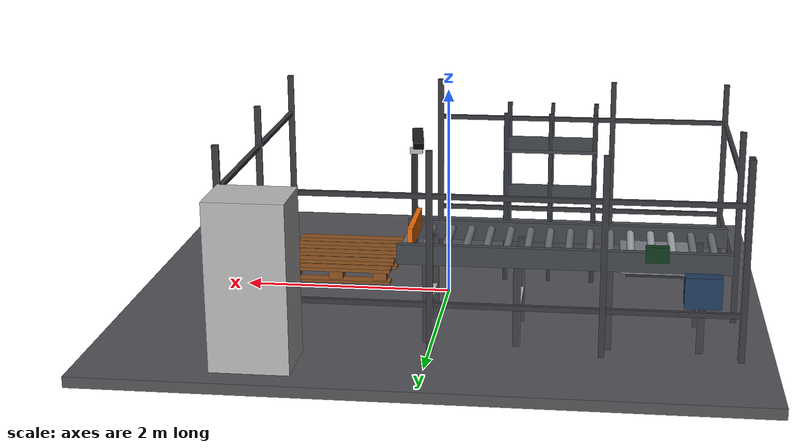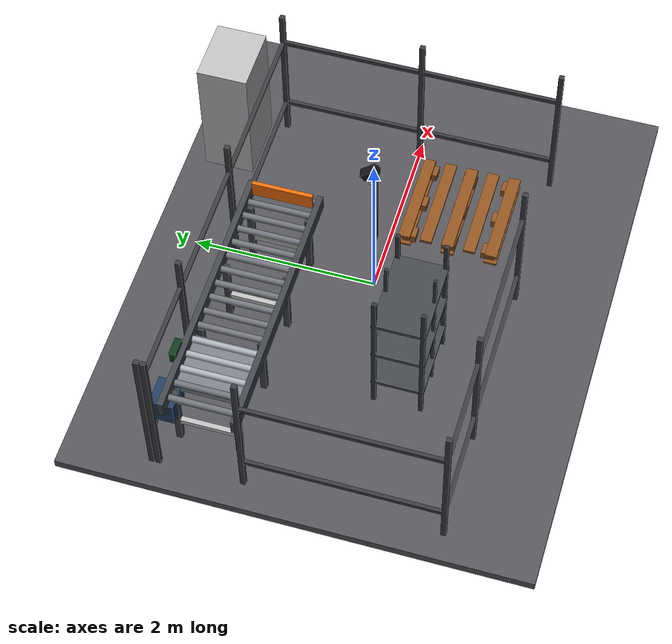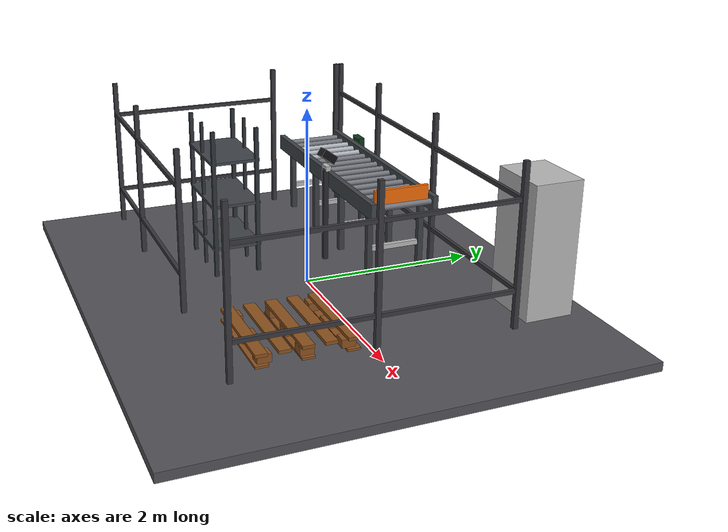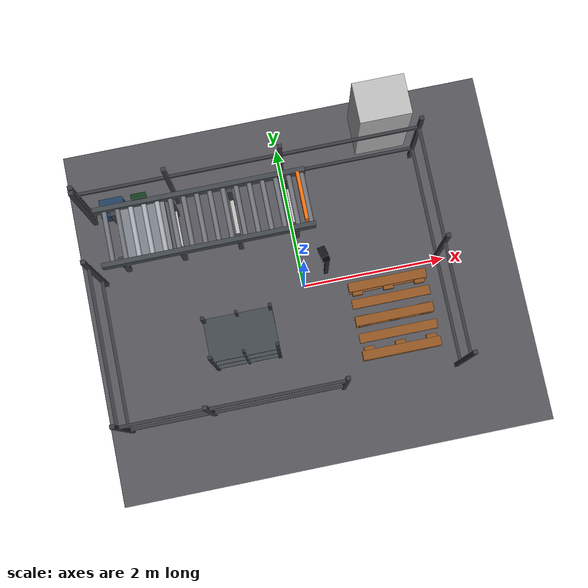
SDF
<?xml version="1.0"?>
<sdf version="1.8">
  <world name="ahead_workcell_v3_2_compact">
    <plugin filename="ignition-gazebo-physics-system" name="ignition::gazebo::systems::Physics"/>
    <plugin filename="ignition-gazebo-user-commands-system" name="ignition::gazebo::systems::UserCommands"/>
    <plugin filename="ignition-gazebo-scene-broadcaster-system" name="ignition::gazebo::systems::SceneBroadcaster"/>
    <plugin filename="ignition-gazebo-sensors-system" name="ignition::gazebo::systems::Sensors"><render_engine>ogre2</render_engine></plugin>
    <gravity>0 0 -9.80665</gravity>
    <physics name="default_physics" type="ignored"><max_step_size>0.001</max_step_size><real_time_factor>1.0</real_time_factor></physics>
    <light type="directional" name="sun"><pose>0 0 8 0 0 0</pose><diffuse>0.8 0.8 0.8 1</diffuse><direction>-0.4 0.3 -1</direction></light>

    <model name="floor"><static>true</static><link name="floor_link">
      <collision name="collision"><pose>0 0 -0.05 0 0 0</pose><geometry><box><size>6 5 0.10</size></box></geometry></collision>
      <visual name="visual"><pose>0 0 -0.05 0 0 0</pose><geometry><box><size>6 5 0.10</size></box></geometry><material><ambient>0.22 0.22 0.23 1</ambient><diffuse>0.32 0.32 0.34 1</diffuse></material></visual>
    </link></model>

    <model name="conveyor_main">
      <static>true</static>

      <link name="conveyor_link">

        <collision name="collision">
          <pose>-1.15 1.05 0.75 0 0 0</pose>

          <geometry>
            <box><size>2.80 0.80 0.20</size></box>
          </geometry>

          <surface>
            <friction>
              <ode>
                <mu>0.7</mu>
                <mu2>150</mu2>
                <fdir1>0 1 0</fdir1>
              </ode>
            </friction>
          </surface>
        </collision>

        <!-- aluminium / steel side frame -->
        <visual name="left_rail">
          <pose>-1.15 0.67 0.84 0 0 0</pose>
          <geometry>
            <box><size>2.90 0.065 0.18</size></box>
          </geometry>
          <material>
            <ambient>0.11 0.12 0.13 1</ambient>
            <diffuse>0.25 0.27 0.29 1</diffuse>
          </material>
        </visual>

        <visual name="right_rail">
          <pose>-1.15 1.43 0.84 0 0 0</pose>
          <geometry>
            <box><size>2.90 0.065 0.18</size></box>
          </geometry>
          <material>
            <ambient>0.11 0.12 0.13 1</ambient>
            <diffuse>0.25 0.27 0.29 1</diffuse>
          </material>
        </visual>

        <visual name="roller_00">
          <pose>-2.450 1.05 0.86 1.57079632679 0 0</pose>
          <geometry>
            <cylinder>
              <radius>0.035</radius>
              <length>0.68</length>
            </cylinder>
          </geometry>
          <material>
            <ambient>0.27 0.28 0.30 1</ambient>
            <diffuse>0.44 0.45 0.48 1</diffuse>
          </material>
        </visual>

        <visual name="roller_01">
          <pose>-2.270 1.05 0.86 1.57079632679 0 0</pose>
          <geometry>
            <cylinder>
              <radius>0.035</radius>
              <length>0.68</length>
            </cylinder>
          </geometry>
          <material>
            <ambient>0.27 0.28 0.30 1</ambient>
            <diffuse>0.44 0.45 0.48 1</diffuse>
          </material>
        </visual>

        <visual name="roller_02">
          <pose>-2.090 1.05 0.86 1.57079632679 0 0</pose>
          <geometry>
            <cylinder>
              <radius>0.035</radius>
              <length>0.68</length>
            </cylinder>
          </geometry>
          <material>
            <ambient>0.43 0.45 0.47 1</ambient>
            <diffuse>0.66 0.68 0.71 1</diffuse>
          </material>
        </visual>

        <visual name="roller_03">
          <pose>-1.910 1.05 0.86 1.57079632679 0 0</pose>
          <geometry>
            <cylinder>
              <radius>0.035</radius>
              <length>0.68</length>
            </cylinder>
          </geometry>
          <material>
            <ambient>0.43 0.45 0.47 1</ambient>
            <diffuse>0.66 0.68 0.71 1</diffuse>
          </material>
        </visual>

        <visual name="roller_04">
          <pose>-1.730 1.05 0.86 1.57079632679 0 0</pose>
          <geometry>
            <cylinder>
              <radius>0.035</radius>
              <length>0.68</length>
            </cylinder>
          </geometry>
          <material>
            <ambient>0.43 0.45 0.47 1</ambient>
            <diffuse>0.66 0.68 0.71 1</diffuse>
          </material>
        </visual>

        <visual name="roller_05">
          <pose>-1.550 1.05 0.86 1.57079632679 0 0</pose>
          <geometry>
            <cylinder>
              <radius>0.035</radius>
              <length>0.68</length>
            </cylinder>
          </geometry>
          <material>
            <ambient>0.27 0.28 0.30 1</ambient>
            <diffuse>0.44 0.45 0.48 1</diffuse>
          </material>
        </visual>

        <visual name="roller_06">
          <pose>-1.370 1.05 0.86 1.57079632679 0 0</pose>
          <geometry>
            <cylinder>
              <radius>0.035</radius>
              <length>0.68</length>
            </cylinder>
          </geometry>
          <material>
            <ambient>0.27 0.28 0.30 1</ambient>
            <diffuse>0.44 0.45 0.48 1</diffuse>
          </material>
        </visual>

        <visual name="roller_07">
          <pose>-1.190 1.05 0.86 1.57079632679 0 0</pose>
          <geometry>
            <cylinder>
              <radius>0.035</radius>
              <length>0.68</length>
            </cylinder>
          </geometry>
          <material>
            <ambient>0.27 0.28 0.30 1</ambient>
            <diffuse>0.44 0.45 0.48 1</diffuse>
          </material>
        </visual>

        <visual name="roller_08">
          <pose>-1.010 1.05 0.86 1.57079632679 0 0</pose>
          <geometry>
            <cylinder>
              <radius>0.035</radius>
              <length>0.68</length>
            </cylinder>
          </geometry>
          <material>
            <ambient>0.27 0.28 0.30 1</ambient>
            <diffuse>0.44 0.45 0.48 1</diffuse>
          </material>
        </visual>

        <visual name="roller_09">
          <pose>-0.830 1.05 0.86 1.57079632679 0 0</pose>
          <geometry>
            <cylinder>
              <radius>0.035</radius>
              <length>0.68</length>
            </cylinder>
          </geometry>
          <material>
            <ambient>0.27 0.28 0.30 1</ambient>
            <diffuse>0.44 0.45 0.48 1</diffuse>
          </material>
        </visual>

        <visual name="roller_10">
          <pose>-0.650 1.05 0.86 1.57079632679 0 0</pose>
          <geometry>
            <cylinder>
              <radius>0.035</radius>
              <length>0.68</length>
            </cylinder>
          </geometry>
          <material>
            <ambient>0.27 0.28 0.30 1</ambient>
            <diffuse>0.44 0.45 0.48 1</diffuse>
          </material>
        </visual>

        <visual name="roller_11">
          <pose>-0.470 1.05 0.86 1.57079632679 0 0</pose>
          <geometry>
            <cylinder>
              <radius>0.035</radius>
              <length>0.68</length>
            </cylinder>
          </geometry>
          <material>
            <ambient>0.27 0.28 0.30 1</ambient>
            <diffuse>0.44 0.45 0.48 1</diffuse>
          </material>
        </visual>

        <visual name="roller_12">
          <pose>-0.290 1.05 0.86 1.57079632679 0 0</pose>
          <geometry>
            <cylinder>
              <radius>0.035</radius>
              <length>0.68</length>
            </cylinder>
          </geometry>
          <material>
            <ambient>0.27 0.28 0.30 1</ambient>
            <diffuse>0.44 0.45 0.48 1</diffuse>
          </material>
        </visual>

        <visual name="roller_13">
          <pose>-0.110 1.05 0.86 1.57079632679 0 0</pose>
          <geometry>
            <cylinder>
              <radius>0.035</radius>
              <length>0.68</length>
            </cylinder>
          </geometry>
          <material>
            <ambient>0.27 0.28 0.30 1</ambient>
            <diffuse>0.44 0.45 0.48 1</diffuse>
          </material>
        </visual>

        <visual name="roller_14">
          <pose>0.070 1.05 0.86 1.57079632679 0 0</pose>
          <geometry>
            <cylinder>
              <radius>0.035</radius>
              <length>0.68</length>
            </cylinder>
          </geometry>
          <material>
            <ambient>0.27 0.28 0.30 1</ambient>
            <diffuse>0.44 0.45 0.48 1</diffuse>
          </material>
        </visual>

        <visual name="roller_15">
          <pose>0.250 1.05 0.86 1.57079632679 0 0</pose>
          <geometry>
            <cylinder>
              <radius>0.035</radius>
              <length>0.68</length>
            </cylinder>
          </geometry>
          <material>
            <ambient>0.27 0.28 0.30 1</ambient>
            <diffuse>0.44 0.45 0.48 1</diffuse>
          </material>
        </visual>

        <visual name="leg_l_0">
          <pose>-2.35 0.73 0.40 0 0 0</pose>
          <geometry>
            <box><size>0.065 0.065 0.80</size></box>
          </geometry>
          <material>
            <ambient>0.12 0.13 0.14 1</ambient>
            <diffuse>0.23 0.24 0.26 1</diffuse>
          </material>
        </visual>

        <visual name="leg_r_0">
          <pose>-2.35 1.37 0.40 0 0 0</pose>
          <geometry>
            <box><size>0.065 0.065 0.80</size></box>
          </geometry>
          <material>
            <ambient>0.12 0.13 0.14 1</ambient>
            <diffuse>0.23 0.24 0.26 1</diffuse>
          </material>
        </visual>

        <visual name="crossbar_0">
          <pose>-2.35 1.05 0.31 0 0 0</pose>
          <geometry>
            <box><size>0.055 0.68 0.055</size></box>
          </geometry>
        </visual>

        <visual name="leg_l_1">
          <pose>-1.55 0.73 0.40 0 0 0</pose>
          <geometry>
            <box><size>0.065 0.065 0.80</size></box>
          </geometry>
          <material>
            <ambient>0.12 0.13 0.14 1</ambient>
            <diffuse>0.23 0.24 0.26 1</diffuse>
          </material>
        </visual>

        <visual name="leg_r_1">
          <pose>-1.55 1.37 0.40 0 0 0</pose>
          <geometry>
            <box><size>0.065 0.065 0.80</size></box>
          </geometry>
          <material>
            <ambient>0.12 0.13 0.14 1</ambient>
            <diffuse>0.23 0.24 0.26 1</diffuse>
          </material>
        </visual>

        <visual name="crossbar_1">
          <pose>-1.55 1.05 0.31 0 0 0</pose>
          <geometry>
            <box><size>0.055 0.68 0.055</size></box>
          </geometry>
        </visual>

        <visual name="leg_l_2">
          <pose>-0.75 0.73 0.40 0 0 0</pose>
          <geometry>
            <box><size>0.065 0.065 0.80</size></box>
          </geometry>
          <material>
            <ambient>0.12 0.13 0.14 1</ambient>
            <diffuse>0.23 0.24 0.26 1</diffuse>
          </material>
        </visual>

        <visual name="leg_r_2">
          <pose>-0.75 1.37 0.40 0 0 0</pose>
          <geometry>
            <box><size>0.065 0.065 0.80</size></box>
          </geometry>
          <material>
            <ambient>0.12 0.13 0.14 1</ambient>
            <diffuse>0.23 0.24 0.26 1</diffuse>
          </material>
        </visual>

        <visual name="crossbar_2">
          <pose>-0.75 1.05 0.31 0 0 0</pose>
          <geometry>
            <box><size>0.055 0.68 0.055</size></box>
          </geometry>
        </visual>

        <visual name="leg_l_3">
          <pose>0.05 0.73 0.40 0 0 0</pose>
          <geometry>
            <box><size>0.065 0.065 0.80</size></box>
          </geometry>
          <material>
            <ambient>0.12 0.13 0.14 1</ambient>
            <diffuse>0.23 0.24 0.26 1</diffuse>
          </material>
        </visual>

        <visual name="leg_r_3">
          <pose>0.05 1.37 0.40 0 0 0</pose>
          <geometry>
            <box><size>0.065 0.065 0.80</size></box>
          </geometry>
          <material>
            <ambient>0.12 0.13 0.14 1</ambient>
            <diffuse>0.23 0.24 0.26 1</diffuse>
          </material>
        </visual>

        <visual name="crossbar_3">
          <pose>0.05 1.05 0.31 0 0 0</pose>
          <geometry>
            <box><size>0.055 0.68 0.055</size></box>
          </geometry>
        </visual>

        <!-- Motor / drive box -->
        <visual name="drive_motor">
          <pose>-2.35 1.47 0.62 0 0 0</pose>
          <geometry>
            <box><size>0.32 0.25 0.28</size></box>
          </geometry>
          <material>
            <ambient>0.06 0.10 0.15 1</ambient>
            <diffuse>0.12 0.23 0.36 1</diffuse>
          </material>
        </visual>

        <!-- Pick position stopper -->
        <visual name="pick_stopper">
          <pose>0.19 1.05 0.96 0 0 0</pose>
          <geometry>
            <box><size>0.045 0.66 0.18</size></box>
          </geometry>
          <material>
            <ambient>0.65 0.25 0.02 1</ambient>
            <diffuse>0.95 0.42 0.03 1</diffuse>
          </material>
        </visual>

      </link>

      <plugin filename="libignition-gazebo-track-controller-system.so"
              name="gz::sim::systems::TrackController">
        <link>conveyor_link</link>
      </plugin>

    </model>

    <model name="inline_scale">
      <static>true</static>

      <link name="scale_link">

        <visual name="weighing_frame">
          <pose>-1.95 1.05 0.755 0 0 0</pose>
          <geometry>
            <box><size>0.62 0.70 0.085</size></box>
          </geometry>
          <material>
            <ambient>0.24 0.25 0.27 1</ambient>
            <diffuse>0.47 0.49 0.52 1</diffuse>
          </material>
        </visual>

        <visual name="loadcell_base">
          <pose>-1.95 1.05 0.685 0 0 0</pose>
          <geometry>
            <box><size>0.52 0.54 0.045</size></box>
          </geometry>
          <material>
            <ambient>0.08 0.09 0.10 1</ambient>
            <diffuse>0.17 0.18 0.20 1</diffuse>
          </material>
        </visual>

        <!-- Small scale display on side -->
        <visual name="indicator">
          <pose>-1.95 1.49 0.93 0 0 0</pose>
          <geometry>
            <box><size>0.20 0.07 0.14</size></box>
          </geometry>
          <material>
            <ambient>0.03 0.08 0.05 1</ambient>
            <diffuse>0.06 0.22 0.11 1</diffuse>
          </material>
        </visual>

      </link>
    </model>

    <model name="pallet_main">
      <static>true</static>
      <pose>1.15 -0.65 0 0 0 0</pose>
      <link name="pallet_link">

      <collision name="bottom_runner_0_collision">
        <pose>0 -0.48 0.0125 0 0 0</pose>
        <geometry><box><size>1.1 0.14 0.025</size></box></geometry>
      </collision>
      <visual name="bottom_runner_0_visual">
        <pose>0 -0.48 0.0125 0 0 0</pose>
        <geometry><box><size>1.1 0.14 0.025</size></box></geometry>
        <material>
          <ambient>0.34 0.20 0.08 1</ambient>
          <diffuse>0.55 0.32 0.12 1</diffuse>
        </material>
      </visual>

      <collision name="bottom_runner_1_collision">
        <pose>0 0.0 0.0125 0 0 0</pose>
        <geometry><box><size>1.1 0.14 0.025</size></box></geometry>
      </collision>
      <visual name="bottom_runner_1_visual">
        <pose>0 0.0 0.0125 0 0 0</pose>
        <geometry><box><size>1.1 0.14 0.025</size></box></geometry>
        <material>
          <ambient>0.34 0.20 0.08 1</ambient>
          <diffuse>0.55 0.32 0.12 1</diffuse>
        </material>
      </visual>

      <collision name="bottom_runner_2_collision">
        <pose>0 0.48 0.0125 0 0 0</pose>
        <geometry><box><size>1.1 0.14 0.025</size></box></geometry>
      </collision>
      <visual name="bottom_runner_2_visual">
        <pose>0 0.48 0.0125 0 0 0</pose>
        <geometry><box><size>1.1 0.14 0.025</size></box></geometry>
        <material>
          <ambient>0.34 0.20 0.08 1</ambient>
          <diffuse>0.55 0.32 0.12 1</diffuse>
        </material>
      </visual>

      <collision name="support_block_0_0_collision">
        <pose>-0.44 -0.44 0.07 0 0 0</pose>
        <geometry><box><size>0.14 0.15 0.09</size></box></geometry>
      </collision>
      <visual name="support_block_0_0_visual">
        <pose>-0.44 -0.44 0.07 0 0 0</pose>
        <geometry><box><size>0.14 0.15 0.09</size></box></geometry>
        <material>
          <ambient>0.34 0.20 0.08 1</ambient>
          <diffuse>0.55 0.32 0.12 1</diffuse>
        </material>
      </visual>

      <collision name="support_block_0_1_collision">
        <pose>-0.44 0.0 0.07 0 0 0</pose>
        <geometry><box><size>0.14 0.15 0.09</size></box></geometry>
      </collision>
      <visual name="support_block_0_1_visual">
        <pose>-0.44 0.0 0.07 0 0 0</pose>
        <geometry><box><size>0.14 0.15 0.09</size></box></geometry>
        <material>
          <ambient>0.34 0.20 0.08 1</ambient>
          <diffuse>0.55 0.32 0.12 1</diffuse>
        </material>
      </visual>

      <collision name="support_block_0_2_collision">
        <pose>-0.44 0.44 0.07 0 0 0</pose>
        <geometry><box><size>0.14 0.15 0.09</size></box></geometry>
      </collision>
      <visual name="support_block_0_2_visual">
        <pose>-0.44 0.44 0.07 0 0 0</pose>
        <geometry><box><size>0.14 0.15 0.09</size></box></geometry>
        <material>
          <ambient>0.34 0.20 0.08 1</ambient>
          <diffuse>0.55 0.32 0.12 1</diffuse>
        </material>
      </visual>

      <collision name="support_block_1_0_collision">
        <pose>0.0 -0.44 0.07 0 0 0</pose>
        <geometry><box><size>0.14 0.15 0.09</size></box></geometry>
      </collision>
      <visual name="support_block_1_0_visual">
        <pose>0.0 -0.44 0.07 0 0 0</pose>
        <geometry><box><size>0.14 0.15 0.09</size></box></geometry>
        <material>
          <ambient>0.34 0.20 0.08 1</ambient>
          <diffuse>0.55 0.32 0.12 1</diffuse>
        </material>
      </visual>

      <collision name="support_block_1_1_collision">
        <pose>0.0 0.0 0.07 0 0 0</pose>
        <geometry><box><size>0.14 0.15 0.09</size></box></geometry>
      </collision>
      <visual name="support_block_1_1_visual">
        <pose>0.0 0.0 0.07 0 0 0</pose>
        <geometry><box><size>0.14 0.15 0.09</size></box></geometry>
        <material>
          <ambient>0.34 0.20 0.08 1</ambient>
          <diffuse>0.55 0.32 0.12 1</diffuse>
        </material>
      </visual>

      <collision name="support_block_1_2_collision">
        <pose>0.0 0.44 0.07 0 0 0</pose>
        <geometry><box><size>0.14 0.15 0.09</size></box></geometry>
      </collision>
      <visual name="support_block_1_2_visual">
        <pose>0.0 0.44 0.07 0 0 0</pose>
        <geometry><box><size>0.14 0.15 0.09</size></box></geometry>
        <material>
          <ambient>0.34 0.20 0.08 1</ambient>
          <diffuse>0.55 0.32 0.12 1</diffuse>
        </material>
      </visual>

      <collision name="support_block_2_0_collision">
        <pose>0.44 -0.44 0.07 0 0 0</pose>
        <geometry><box><size>0.14 0.15 0.09</size></box></geometry>
      </collision>
      <visual name="support_block_2_0_visual">
        <pose>0.44 -0.44 0.07 0 0 0</pose>
        <geometry><box><size>0.14 0.15 0.09</size></box></geometry>
        <material>
          <ambient>0.34 0.20 0.08 1</ambient>
          <diffuse>0.55 0.32 0.12 1</diffuse>
        </material>
      </visual>

      <collision name="support_block_2_1_collision">
        <pose>0.44 0.0 0.07 0 0 0</pose>
        <geometry><box><size>0.14 0.15 0.09</size></box></geometry>
      </collision>
      <visual name="support_block_2_1_visual">
        <pose>0.44 0.0 0.07 0 0 0</pose>
        <geometry><box><size>0.14 0.15 0.09</size></box></geometry>
        <material>
          <ambient>0.34 0.20 0.08 1</ambient>
          <diffuse>0.55 0.32 0.12 1</diffuse>
        </material>
      </visual>

      <collision name="support_block_2_2_collision">
        <pose>0.44 0.44 0.07 0 0 0</pose>
        <geometry><box><size>0.14 0.15 0.09</size></box></geometry>
      </collision>
      <visual name="support_block_2_2_visual">
        <pose>0.44 0.44 0.07 0 0 0</pose>
        <geometry><box><size>0.14 0.15 0.09</size></box></geometry>
        <material>
          <ambient>0.34 0.20 0.08 1</ambient>
          <diffuse>0.55 0.32 0.12 1</diffuse>
        </material>
      </visual>

      <collision name="top_board_0_collision">
        <pose>0 -0.484 0.1325 0 0 0</pose>
        <geometry><box><size>1.1 0.13 0.035</size></box></geometry>
      </collision>
      <visual name="top_board_0_visual">
        <pose>0 -0.484 0.1325 0 0 0</pose>
        <geometry><box><size>1.1 0.13 0.035</size></box></geometry>
        <material>
          <ambient>0.34 0.20 0.08 1</ambient>
          <diffuse>0.55 0.32 0.12 1</diffuse>
        </material>
      </visual>

      <collision name="top_board_1_collision">
        <pose>0 -0.242 0.1325 0 0 0</pose>
        <geometry><box><size>1.1 0.13 0.035</size></box></geometry>
      </collision>
      <visual name="top_board_1_visual">
        <pose>0 -0.242 0.1325 0 0 0</pose>
        <geometry><box><size>1.1 0.13 0.035</size></box></geometry>
        <material>
          <ambient>0.34 0.20 0.08 1</ambient>
          <diffuse>0.55 0.32 0.12 1</diffuse>
        </material>
      </visual>

      <collision name="top_board_2_collision">
        <pose>0 0.0 0.1325 0 0 0</pose>
        <geometry><box><size>1.1 0.13 0.035</size></box></geometry>
      </collision>
      <visual name="top_board_2_visual">
        <pose>0 0.0 0.1325 0 0 0</pose>
        <geometry><box><size>1.1 0.13 0.035</size></box></geometry>
        <material>
          <ambient>0.34 0.20 0.08 1</ambient>
          <diffuse>0.55 0.32 0.12 1</diffuse>
        </material>
      </visual>

      <collision name="top_board_3_collision">
        <pose>0 0.242 0.1325 0 0 0</pose>
        <geometry><box><size>1.1 0.13 0.035</size></box></geometry>
      </collision>
      <visual name="top_board_3_visual">
        <pose>0 0.242 0.1325 0 0 0</pose>
        <geometry><box><size>1.1 0.13 0.035</size></box></geometry>
        <material>
          <ambient>0.34 0.20 0.08 1</ambient>
          <diffuse>0.55 0.32 0.12 1</diffuse>
        </material>
      </visual>

      <collision name="top_board_4_collision">
        <pose>0 0.484 0.1325 0 0 0</pose>
        <geometry><box><size>1.1 0.13 0.035</size></box></geometry>
      </collision>
      <visual name="top_board_4_visual">
        <pose>0 0.484 0.1325 0 0 0</pose>
        <geometry><box><size>1.1 0.13 0.035</size></box></geometry>
        <material>
          <ambient>0.34 0.20 0.08 1</ambient>
          <diffuse>0.55 0.32 0.12 1</diffuse>
        </material>
      </visual>

      </link>
    </model>

    <model name="buffer_rack">
      <static>true</static>

      <pose>-0.95 -0.65 0 0 0 0</pose>

      <link name="rack_link">

        <collision name="post_fl_collision">
          <pose>-0.43 -0.25 0.85 0 0 0</pose>
          <geometry><box><size>0.045 0.045 1.70</size></box></geometry>
        </collision>

        <visual name="post_fl_visual">
          <pose>-0.43 -0.25 0.85 0 0 0</pose>
          <geometry><box><size>0.045 0.045 1.70</size></box></geometry>
          <material>
            <ambient>0.18 0.20 0.22 1</ambient>
            <diffuse>0.18 0.20 0.22 1</diffuse>
          </material>
        </visual>

        <collision name="post_fr_collision">
          <pose>0.43 -0.25 0.85 0 0 0</pose>
          <geometry><box><size>0.045 0.045 1.70</size></box></geometry>
        </collision>

        <visual name="post_fr_visual">
          <pose>0.43 -0.25 0.85 0 0 0</pose>
          <geometry><box><size>0.045 0.045 1.70</size></box></geometry>
          <material>
            <ambient>0.18 0.20 0.22 1</ambient>
            <diffuse>0.18 0.20 0.22 1</diffuse>
          </material>
        </visual>

        <collision name="post_bl_collision">
          <pose>-0.43 0.25 0.85 0 0 0</pose>
          <geometry><box><size>0.045 0.045 1.70</size></box></geometry>
        </collision>

        <visual name="post_bl_visual">
          <pose>-0.43 0.25 0.85 0 0 0</pose>
          <geometry><box><size>0.045 0.045 1.70</size></box></geometry>
          <material>
            <ambient>0.18 0.20 0.22 1</ambient>
            <diffuse>0.18 0.20 0.22 1</diffuse>
          </material>
        </visual>

        <collision name="post_br_collision">
          <pose>0.43 0.25 0.85 0 0 0</pose>
          <geometry><box><size>0.045 0.045 1.70</size></box></geometry>
        </collision>

        <visual name="post_br_visual">
          <pose>0.43 0.25 0.85 0 0 0</pose>
          <geometry><box><size>0.045 0.045 1.70</size></box></geometry>
          <material>
            <ambient>0.18 0.20 0.22 1</ambient>
            <diffuse>0.18 0.20 0.22 1</diffuse>
          </material>
        </visual>

        <collision name="center_front_collision">
          <pose>0 -0.25 0.85 0 0 0</pose>
          <geometry><box><size>0.035 0.035 1.70</size></box></geometry>
        </collision>

        <visual name="center_front_visual">
          <pose>0 -0.25 0.85 0 0 0</pose>
          <geometry><box><size>0.035 0.035 1.70</size></box></geometry>
          <material>
            <ambient>0.18 0.20 0.22 1</ambient>
            <diffuse>0.18 0.20 0.22 1</diffuse>
          </material>
        </visual>

        <collision name="center_back_collision">
          <pose>0 0.25 0.85 0 0 0</pose>
          <geometry><box><size>0.035 0.035 1.70</size></box></geometry>
        </collision>

        <visual name="center_back_visual">
          <pose>0 0.25 0.85 0 0 0</pose>
          <geometry><box><size>0.035 0.035 1.70</size></box></geometry>
          <material>
            <ambient>0.18 0.20 0.22 1</ambient>
            <diffuse>0.18 0.20 0.22 1</diffuse>
          </material>
        </visual>

        <collision name="shelf_0_collision">
          <pose>0 0 0.33 0 0 0</pose>
          <geometry><box><size>0.90 0.56 0.035</size></box></geometry>
        </collision>

        <visual name="shelf_0_visual">
          <pose>0 0 0.33 0 0 0</pose>
          <geometry><box><size>0.90 0.56 0.035</size></box></geometry>
          <material>
            <ambient>0.25 0.27 0.29 1</ambient>
            <diffuse>0.25 0.27 0.29 1</diffuse>
          </material>
        </visual>

        <collision name="shelf_1_collision">
          <pose>0 0 0.83 0 0 0</pose>
          <geometry><box><size>0.90 0.56 0.035</size></box></geometry>
        </collision>

        <visual name="shelf_1_visual">
          <pose>0 0 0.83 0 0 0</pose>
          <geometry><box><size>0.90 0.56 0.035</size></box></geometry>
          <material>
            <ambient>0.25 0.27 0.29 1</ambient>
            <diffuse>0.25 0.27 0.29 1</diffuse>
          </material>
        </visual>

        <collision name="shelf_2_collision">
          <pose>0 0 1.33 0 0 0</pose>
          <geometry><box><size>0.90 0.56 0.035</size></box></geometry>
        </collision>

        <visual name="shelf_2_visual">
          <pose>0 0 1.33 0 0 0</pose>
          <geometry><box><size>0.90 0.56 0.035</size></box></geometry>
          <material>
            <ambient>0.25 0.27 0.29 1</ambient>
            <diffuse>0.25 0.27 0.29 1</diffuse>
          </material>
        </visual>

      </link>

    </model>

    <model name="camera_1_cctv_base">
      <static>true</static>

      <link name="camera_1_link">

        <visual name="mount_post">
          <pose>0.32 0.08 0.91 0 0 0</pose>
          <geometry>
            <box><size>0.055 0.055 1.02</size></box>
          </geometry>
          <material>
            <ambient>0.08 0.08 0.09 1</ambient>
            <diffuse>0.16 0.16 0.18 1</diffuse>
          </material>
        </visual>

        <visual name="mount_arm">
          <pose>0.30 0.10 1.43 0 0 0</pose>
          <geometry>
            <box><size>0.12 0.055 0.055</size></box>
          </geometry>
        </visual>

        <visual name="camera_housing">
          <pose>0.28 0.12 1.55
                0 0.629544 1.761981</pose>
          <geometry>
            <box><size>0.19 0.10 0.09</size></box>
          </geometry>
          <material>
            <ambient>0.035 0.035 0.04 1</ambient>
            <diffuse>0.08 0.08 0.09 1</diffuse>
          </material>
        </visual>

        <sensor name="cctv_camera_1" type="camera">

          <pose>0.28 0.12 1.55
                0 0.629544 1.761981</pose>

          <always_on>true</always_on>
          <update_rate>15</update_rate>

          <!-- 기존 perception 호환성 유지 -->
          <topic>/pac/top_camera/image</topic>

          <camera>
            <horizontal_fov>1.40</horizontal_fov>

            <image>
              <width>1280</width>
              <height>720</height>
              <format>R8G8B8</format>
            </image>

            <clip>
              <near>0.08</near>
              <far>6.0</far>
            </clip>

          </camera>
        </sensor>

      </link>
    </model>

    <model name="safety_fence">
      <static>true</static>

      <link name="fence_link">

        <collision name="post_0_collision">
          <pose>-2.7 -1.5 0.90 0 0 0</pose>
          <geometry><box><size>0.055 0.055 1.80</size></box></geometry>
        </collision>

        <visual name="post_0_visual">
          <pose>-2.7 -1.5 0.90 0 0 0</pose>
          <geometry><box><size>0.055 0.055 1.80</size></box></geometry>
          <material>
            <ambient>0.12 0.12 0.13 1</ambient>
            <diffuse>0.22 0.22 0.24 1</diffuse>
          </material>
        </visual>

        <collision name="post_1_collision">
          <pose>-2.7 0.58 0.90 0 0 0</pose>
          <geometry><box><size>0.055 0.055 1.80</size></box></geometry>
        </collision>

        <visual name="post_1_visual">
          <pose>-2.7 0.58 0.90 0 0 0</pose>
          <geometry><box><size>0.055 0.055 1.80</size></box></geometry>
          <material>
            <ambient>0.12 0.12 0.13 1</ambient>
            <diffuse>0.22 0.22 0.24 1</diffuse>
          </material>
        </visual>

        <collision name="post_2_collision">
          <pose>-2.7 1.48 0.90 0 0 0</pose>
          <geometry><box><size>0.055 0.055 1.80</size></box></geometry>
        </collision>

        <visual name="post_2_visual">
          <pose>-2.7 1.48 0.90 0 0 0</pose>
          <geometry><box><size>0.055 0.055 1.80</size></box></geometry>
          <material>
            <ambient>0.12 0.12 0.13 1</ambient>
            <diffuse>0.22 0.22 0.24 1</diffuse>
          </material>
        </visual>

        <collision name="post_3_collision">
          <pose>-1.55 -1.5 0.90 0 0 0</pose>
          <geometry><box><size>0.055 0.055 1.80</size></box></geometry>
        </collision>

        <visual name="post_3_visual">
          <pose>-1.55 -1.5 0.90 0 0 0</pose>
          <geometry><box><size>0.055 0.055 1.80</size></box></geometry>
          <material>
            <ambient>0.12 0.12 0.13 1</ambient>
            <diffuse>0.22 0.22 0.24 1</diffuse>
          </material>
        </visual>

        <collision name="post_4_collision">
          <pose>0.25 -1.5 0.90 0 0 0</pose>
          <geometry><box><size>0.055 0.055 1.80</size></box></geometry>
        </collision>

        <visual name="post_4_visual">
          <pose>0.25 -1.5 0.90 0 0 0</pose>
          <geometry><box><size>0.055 0.055 1.80</size></box></geometry>
          <material>
            <ambient>0.12 0.12 0.13 1</ambient>
            <diffuse>0.22 0.22 0.24 1</diffuse>
          </material>
        </visual>

        <collision name="post_5_collision">
          <pose>1.85 -1.5 0.90 0 0 0</pose>
          <geometry><box><size>0.055 0.055 1.80</size></box></geometry>
        </collision>

        <visual name="post_5_visual">
          <pose>1.85 -1.5 0.90 0 0 0</pose>
          <geometry><box><size>0.055 0.055 1.80</size></box></geometry>
          <material>
            <ambient>0.12 0.12 0.13 1</ambient>
            <diffuse>0.22 0.22 0.24 1</diffuse>
          </material>
        </visual>

        <collision name="post_6_collision">
          <pose>1.85 0.0 0.90 0 0 0</pose>
          <geometry><box><size>0.055 0.055 1.80</size></box></geometry>
        </collision>

        <visual name="post_6_visual">
          <pose>1.85 0.0 0.90 0 0 0</pose>
          <geometry><box><size>0.055 0.055 1.80</size></box></geometry>
          <material>
            <ambient>0.12 0.12 0.13 1</ambient>
            <diffuse>0.22 0.22 0.24 1</diffuse>
          </material>
        </visual>

        <collision name="post_7_collision">
          <pose>1.85 1.55 0.90 0 0 0</pose>
          <geometry><box><size>0.055 0.055 1.80</size></box></geometry>
        </collision>

        <visual name="post_7_visual">
          <pose>1.85 1.55 0.90 0 0 0</pose>
          <geometry><box><size>0.055 0.055 1.80</size></box></geometry>
          <material>
            <ambient>0.12 0.12 0.13 1</ambient>
            <diffuse>0.22 0.22 0.24 1</diffuse>
          </material>
        </visual>

        <collision name="post_8_collision">
          <pose>0.0 1.55 0.90 0 0 0</pose>
          <geometry><box><size>0.055 0.055 1.80</size></box></geometry>
        </collision>

        <visual name="post_8_visual">
          <pose>0.0 1.55 0.90 0 0 0</pose>
          <geometry><box><size>0.055 0.055 1.80</size></box></geometry>
          <material>
            <ambient>0.12 0.12 0.13 1</ambient>
            <diffuse>0.22 0.22 0.24 1</diffuse>
          </material>
        </visual>

        <collision name="post_9_collision">
          <pose>-1.5 1.55 0.90 0 0 0</pose>
          <geometry><box><size>0.055 0.055 1.80</size></box></geometry>
        </collision>

        <visual name="post_9_visual">
          <pose>-1.5 1.55 0.90 0 0 0</pose>
          <geometry><box><size>0.055 0.055 1.80</size></box></geometry>
          <material>
            <ambient>0.12 0.12 0.13 1</ambient>
            <diffuse>0.22 0.22 0.24 1</diffuse>
          </material>
        </visual>

        <collision name="post_10_collision">
          <pose>-2.7 1.55 0.90 0 0 0</pose>
          <geometry><box><size>0.055 0.055 1.80</size></box></geometry>
        </collision>

        <visual name="post_10_visual">
          <pose>-2.7 1.55 0.90 0 0 0</pose>
          <geometry><box><size>0.055 0.055 1.80</size></box></geometry>
          <material>
            <ambient>0.12 0.12 0.13 1</ambient>
            <diffuse>0.22 0.22 0.24 1</diffuse>
          </material>
        </visual>

        <collision name="top_rail_0.42_collision">
          <pose>-0.425 1.55 0.42 0 0 0</pose>
          <geometry><box><size>4.55 0.04 0.045</size></box></geometry>
        </collision>

        <visual name="top_rail_0.42_visual">
          <pose>-0.425 1.55 0.42 0 0 0</pose>
          <geometry><box><size>4.55 0.04 0.045</size></box></geometry>
          <material>
            <ambient>0.12 0.12 0.13 1</ambient>
            <diffuse>0.22 0.22 0.24 1</diffuse>
          </material>
        </visual>

        <collision name="right_rail_0.42_collision">
          <pose>1.85 0.025 0.42 0 0 0</pose>
          <geometry><box><size>0.04 3.05 0.045</size></box></geometry>
        </collision>

        <visual name="right_rail_0.42_visual">
          <pose>1.85 0.025 0.42 0 0 0</pose>
          <geometry><box><size>0.04 3.05 0.045</size></box></geometry>
          <material>
            <ambient>0.12 0.12 0.13 1</ambient>
            <diffuse>0.22 0.22 0.24 1</diffuse>
          </material>
        </visual>

        <collision name="bottom_left_0.42_collision">
          <pose>-1.225 -1.50 0.42 0 0 0</pose>
          <geometry><box><size>2.95 0.04 0.045</size></box></geometry>
        </collision>

        <visual name="bottom_left_0.42_visual">
          <pose>-1.225 -1.50 0.42 0 0 0</pose>
          <geometry><box><size>2.95 0.04 0.045</size></box></geometry>
          <material>
            <ambient>0.12 0.12 0.13 1</ambient>
            <diffuse>0.22 0.22 0.24 1</diffuse>
          </material>
        </visual>

        <collision name="left_lower_0.42_collision">
          <pose>-2.70 -0.46 0.42 0 0 0</pose>
          <geometry><box><size>0.04 2.08 0.045</size></box></geometry>
        </collision>

        <visual name="left_lower_0.42_visual">
          <pose>-2.70 -0.46 0.42 0 0 0</pose>
          <geometry><box><size>0.04 2.08 0.045</size></box></geometry>
          <material>
            <ambient>0.12 0.12 0.13 1</ambient>
            <diffuse>0.22 0.22 0.24 1</diffuse>
          </material>
        </visual>

        <collision name="top_rail_1.4_collision">
          <pose>-0.425 1.55 1.4 0 0 0</pose>
          <geometry><box><size>4.55 0.04 0.045</size></box></geometry>
        </collision>

        <visual name="top_rail_1.4_visual">
          <pose>-0.425 1.55 1.4 0 0 0</pose>
          <geometry><box><size>4.55 0.04 0.045</size></box></geometry>
          <material>
            <ambient>0.12 0.12 0.13 1</ambient>
            <diffuse>0.22 0.22 0.24 1</diffuse>
          </material>
        </visual>

        <collision name="right_rail_1.4_collision">
          <pose>1.85 0.025 1.4 0 0 0</pose>
          <geometry><box><size>0.04 3.05 0.045</size></box></geometry>
        </collision>

        <visual name="right_rail_1.4_visual">
          <pose>1.85 0.025 1.4 0 0 0</pose>
          <geometry><box><size>0.04 3.05 0.045</size></box></geometry>
          <material>
            <ambient>0.12 0.12 0.13 1</ambient>
            <diffuse>0.22 0.22 0.24 1</diffuse>
          </material>
        </visual>

        <collision name="bottom_left_1.4_collision">
          <pose>-1.225 -1.50 1.4 0 0 0</pose>
          <geometry><box><size>2.95 0.04 0.045</size></box></geometry>
        </collision>

        <visual name="bottom_left_1.4_visual">
          <pose>-1.225 -1.50 1.4 0 0 0</pose>
          <geometry><box><size>2.95 0.04 0.045</size></box></geometry>
          <material>
            <ambient>0.12 0.12 0.13 1</ambient>
            <diffuse>0.22 0.22 0.24 1</diffuse>
          </material>
        </visual>

        <collision name="left_lower_1.4_collision">
          <pose>-2.70 -0.46 1.4 0 0 0</pose>
          <geometry><box><size>0.04 2.08 0.045</size></box></geometry>
        </collision>

        <visual name="left_lower_1.4_visual">
          <pose>-2.70 -0.46 1.4 0 0 0</pose>
          <geometry><box><size>0.04 2.08 0.045</size></box></geometry>
          <material>
            <ambient>0.12 0.12 0.13 1</ambient>
            <diffuse>0.22 0.22 0.24 1</diffuse>
          </material>
        </visual>

      </link>

    </model>

    <model name="controller_cabinet"><static>true</static><pose>1.45 2.00 0 0 0 0</pose><link name="cabinet_link">
      <collision name="collision"><pose>0 0 0.75 0 0 0</pose><geometry><box><size>0.70 0.55 1.50</size></box></geometry></collision>
      <visual name="visual"><pose>0 0 0.75 0 0 0</pose><geometry><box><size>0.70 0.55 1.50</size></box></geometry></visual>
    </link></model>

    <!-- HDP160-31 is spawned separately only after verified description is available. -->
  </world>
</sdf>
